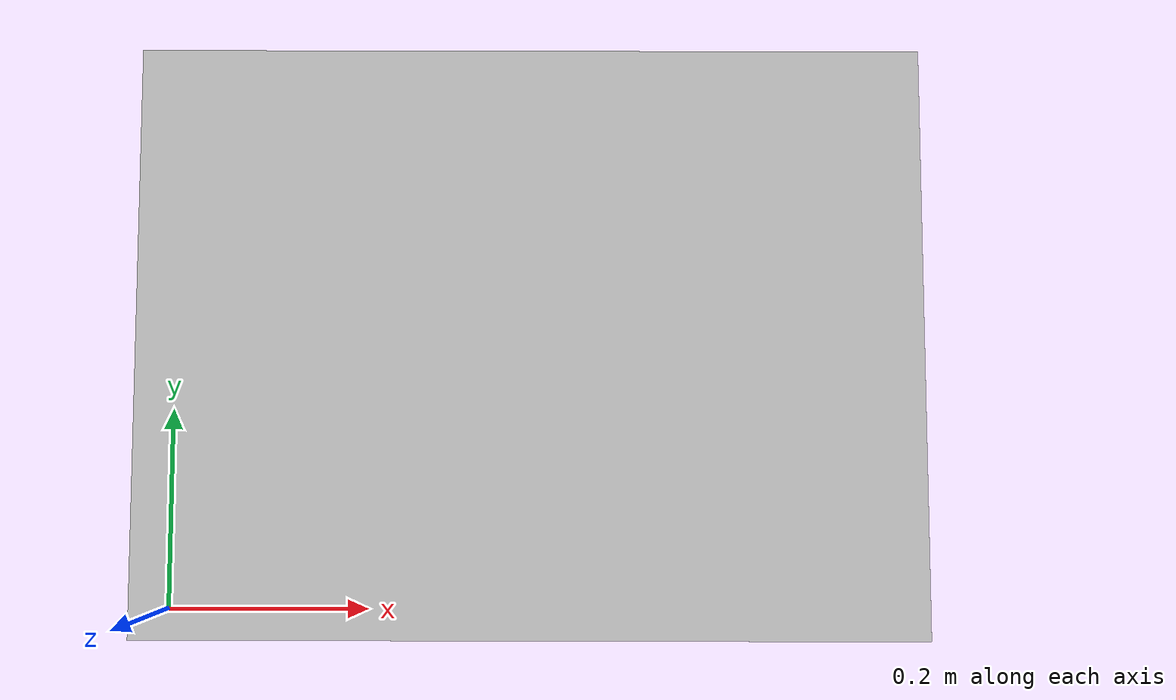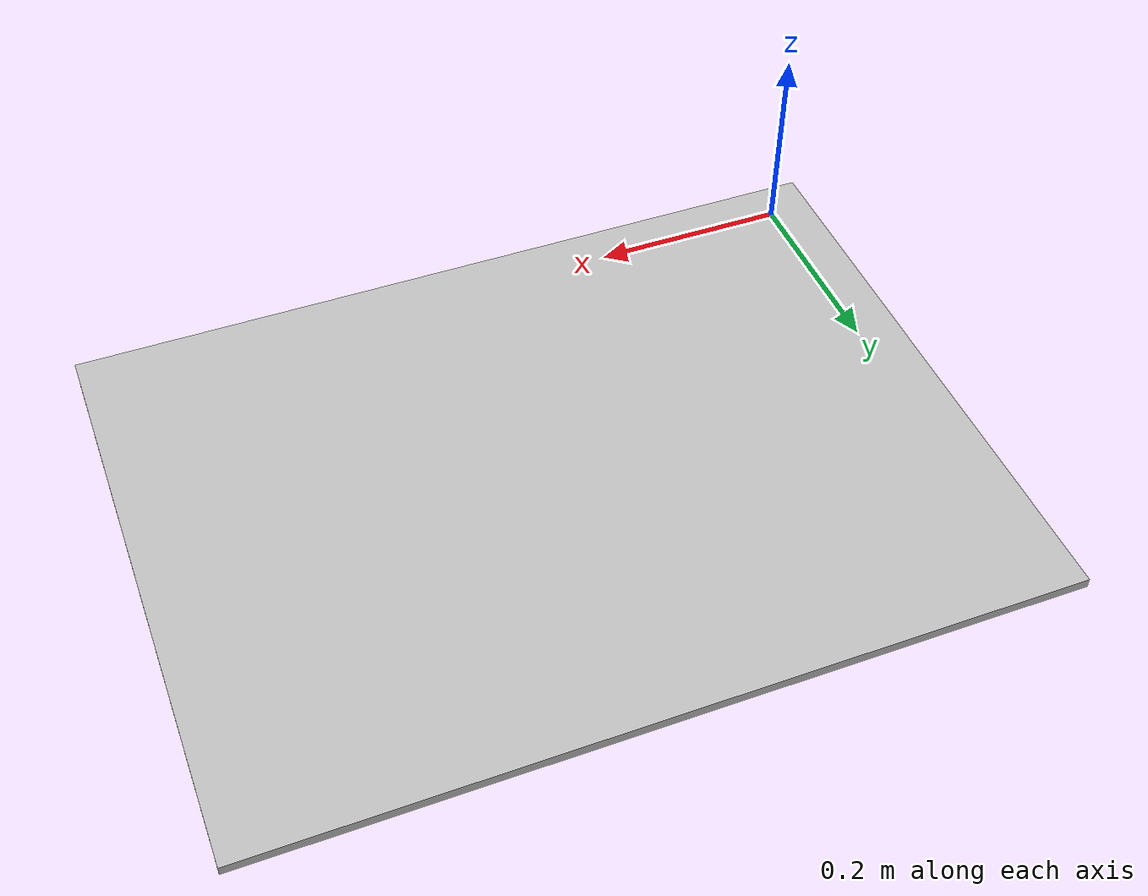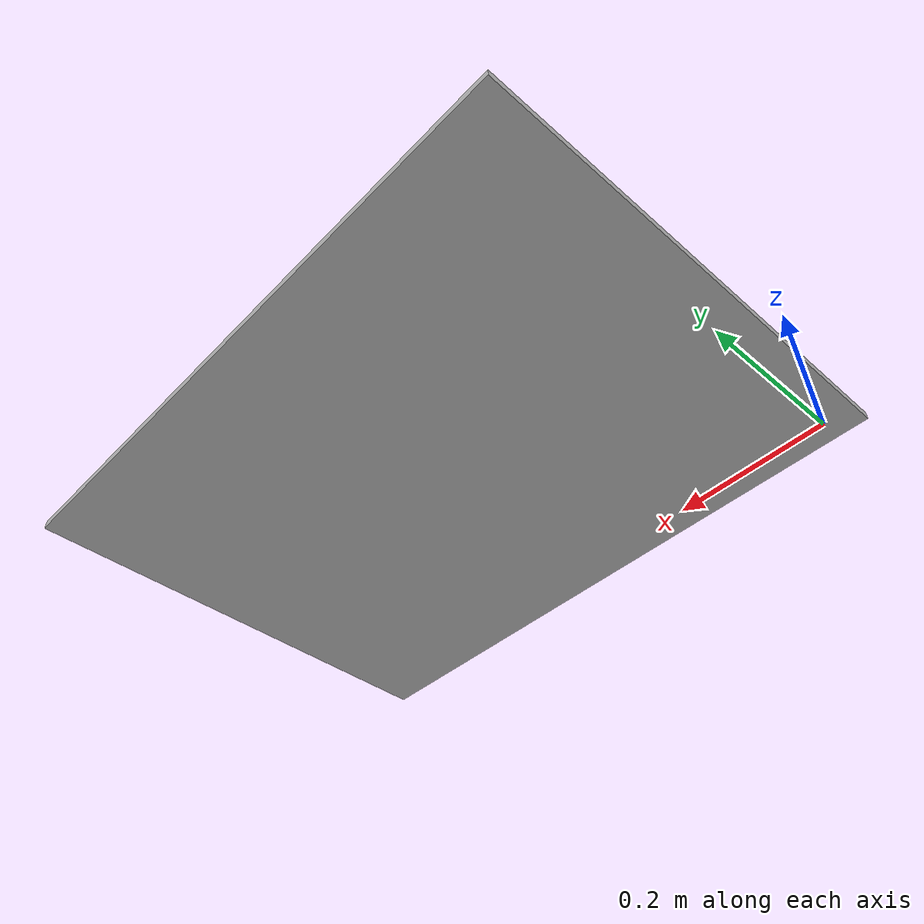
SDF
<?xml version="1.0"?>
<sdf version="1.4">
  <model name="charuco_800x600_5x5_100">
    <static>1</static>
    <link name="charuco">
      <pose>0 0 0 0 0 0</pose>
      <visual name="charuco_800x600">
        <geometry>
          <mesh>
            <uri>model://charuco_800x600_5x5_100/charuco_800x600_5x5_100.dae</uri>
          </mesh>
        </geometry>
      </visual>
      <collision name="charuco_800x600_5x5_100">
        <geometry>
          <mesh>
            <uri>model://charuco_800x600_5x5_100/charuco_800x600_5x5_100.dae</uri>
          </mesh>
        </geometry>
      </collision>
    </link>
  </model>
</sdf>
